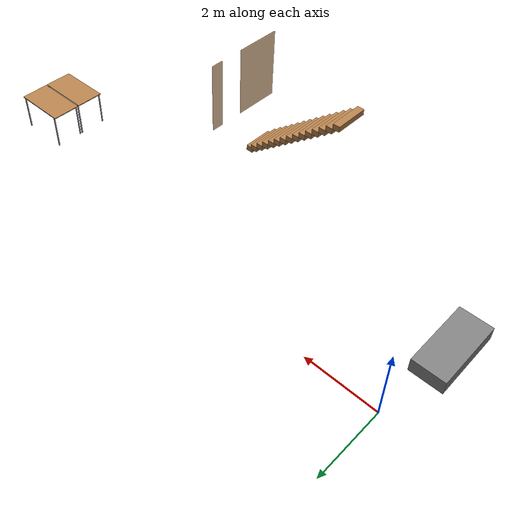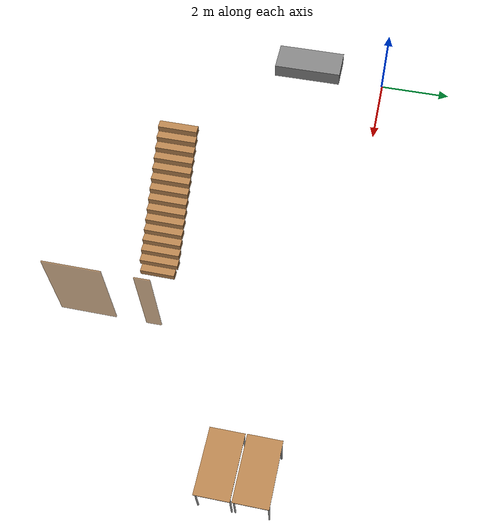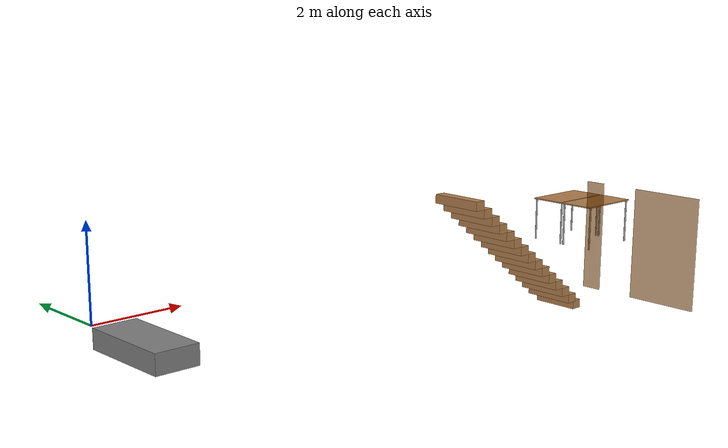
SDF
<sdf version="1.6">
 <world name="husarion_office">
  <physics name="1ms" type="ignored">
   <max_step_size>0.001</max_step_size>
   <real_time_factor>1.0</real_time_factor>
  </physics>
  <plugin filename="ignition-gazebo-contact-system" name="ignition::gazebo::systems::Contact"/>
  <plugin filename="libignition-gazebo-imu-system.so" name="ignition::gazebo::systems::Imu"/>
  <plugin filename="ignition-gazebo-physics-system" name="ignition::gazebo::systems::Physics"/>
  <plugin filename="ignition-gazebo-scene-broadcaster-system" name="ignition::gazebo::systems::SceneBroadcaster"/>
  <plugin name="ignition::gazebo::systems::UserCommands" filename="ignition-gazebo-user-commands-system"/>
  <plugin filename="libignition-gazebo-joint-state-publisher-system.so" name="ignition::gazebo::systems::JointStatePublisher"/>
  <plugin filename="libignition-gazebo-triggered-publisher-system.so" name="ignition::gazebo::systems::TriggeredPublisher">
   <input type="ignition.msgs.Int32" topic="/keyboard/keypress"><match field="data">16777235</match></input>
   <output type="ignition.msgs.Twist" topic="/cmd_vel">linear: {x: 0.5}, angular: {z: 0.0}</output>
  </plugin>
  <plugin filename="libignition-gazebo-triggered-publisher-system.so" name="ignition::gazebo::systems::TriggeredPublisher">
   <input type="ignition.msgs.Int32" topic="/keyboard/keypress"><match field="data">16777237</match></input>
   <output type="ignition.msgs.Twist" topic="/cmd_vel">linear: {x: -0.5}, angular: {z: 0.0}</output>
  </plugin>
  <plugin filename="libignition-gazebo-triggered-publisher-system.so" name="ignition::gazebo::systems::TriggeredPublisher">
   <input type="ignition.msgs.Int32" topic="/keyboard/keypress"><match field="data">16777236</match></input>
   <output type="ignition.msgs.Twist" topic="/cmd_vel">linear: {x: 0.0}, angular: {z: -0.5}</output>
  </plugin>
  <plugin filename="libignition-gazebo-triggered-publisher-system.so" name="ignition::gazebo::systems::TriggeredPublisher">
   <input type="ignition.msgs.Int32" topic="/keyboard/keypress"><match field="data">16777234</match></input>
   <output type="ignition.msgs.Twist" topic="/cmd_vel">linear: {x: 0.0}, angular: {z: 0.5}</output>
  </plugin>
  <plugin filename="libignition-gazebo-sensors-system.so" name="ignition::gazebo::systems::Sensors">
   <render_engine>ogre2</render_engine>
  </plugin>
  <spherical_coordinates>
   <surface_model>EARTH_WGS84</surface_model>
   <world_frame_orientation>ENU</world_frame_orientation>
   <latitude_deg>50.088280</latitude_deg>
   <longitude_deg>19.938931</longitude_deg>
   <elevation>0</elevation>
   <heading_deg>0</heading_deg>
  </spherical_coordinates>
  <scene>
   <ambient>0.8 0.8 0.8 1</ambient>
   <background>0 0 0 1</background>
   <grid>0</grid>
   <shadows>1</shadows>
  </scene>
  <light name="sun" type="directional">
   <pose>0 0 10 0 -0 0</pose>
   <diffuse>0.8 0.8 0.8 1</diffuse>
   <specular>0.2 0.2 0.2 1</specular>
   <attenuation>
    <range>1000</range>
    <constant>0.9</constant>
    <linear>0.01</linear>
    <quadratic>0.001</quadratic>
   </attenuation>
   <direction>-0.5 0.1 -0.9</direction>
   <spot><inner_angle>0</inner_angle><outer_angle>0</outer_angle><falloff>0</falloff></spot>
  </light>
  <model name="OpenRobotics/Table">
   <static>1</static>
   <link name="link">
    <collision name="surface">
     <pose>0 0 1 0 -0 0</pose>
     <geometry><box><size>1.5 0.8 0.03</size></box></geometry>
     <surface><friction><ode><mu>0.6</mu><mu2>0.6</mu2></ode></friction></surface>
    </collision>
    <visual name="visual1">
     <pose>0 0 1 0 -0 0</pose>
     <geometry><box><size>1.5 0.8 0.03</size></box></geometry>
     <material>
      <diffuse>1 1 1 1</diffuse>
      <script><uri>file://media/materials/scripts/gazebo.material</uri><name>Gazebo/Wood</name></script>
      <pbr>
       <metal>
        <albedo_map>https://fuel.gazebosim.org/1.0/openrobotics/models/table/3/files/Table_Diffuse.jpg</albedo_map>
       </metal>
      </pbr>
     </material>
    </visual>
    <collision name="front_left_leg">
     <pose>0.68 0.38 0.5 0 -0 0</pose>
     <geometry><cylinder><radius>0.02</radius><length>1</length></cylinder></geometry>
    </collision>
    <visual name="front_left_leg">
     <pose>0.68 0.38 0.5 0 -0 0</pose>
     <geometry><cylinder><radius>0.02</radius><length>1</length></cylinder></geometry>
     <material>
      <diffuse>0.5 0.5 0.5 1</diffuse>
      <script><uri>file://media/materials/scripts/gazebo.material</uri><name>Gazebo/Grey</name></script>
     </material>
    </visual>
    <collision name="front_right_leg">
     <pose>0.68 -0.38 0.5 0 -0 0</pose>
     <geometry><cylinder><radius>0.02</radius><length>1</length></cylinder></geometry>
    </collision>
    <visual name="front_right_leg">
     <pose>0.68 -0.38 0.5 0 -0 0</pose>
     <geometry><cylinder><radius>0.02</radius><length>1</length></cylinder></geometry>
     <material>
      <diffuse>0.5 0.5 0.5 1</diffuse>
      <script><uri>file://media/materials/scripts/gazebo.material</uri><name>Gazebo/Grey</name></script>
     </material>
    </visual>
    <collision name="back_right_leg">
     <pose>-0.68 -0.38 0.5 0 -0 0</pose>
     <geometry><cylinder><radius>0.02</radius><length>1</length></cylinder></geometry>
    </collision>
    <visual name="back_right_leg">
     <pose>-0.68 -0.38 0.5 0 -0 0</pose>
     <geometry><cylinder><radius>0.02</radius><length>1</length></cylinder></geometry>
     <material>
      <diffuse>0.5 0.5 0.5 1</diffuse>
      <script><uri>file://media/materials/scripts/gazebo.material</uri><name>Gazebo/Grey</name></script>
     </material>
    </visual>
    <collision name="back_left_leg">
     <pose>-0.68 0.38 0.5 0 -0 0</pose>
     <geometry><cylinder><radius>0.02</radius><length>1</length></cylinder></geometry>
    </collision>
    <visual name="back_left_leg">
     <pose>-0.68 0.38 0.5 0 -0 0</pose>
     <geometry><cylinder><radius>0.02</radius><length>1</length></cylinder></geometry>
     <material>
      <diffuse>0.5 0.5 0.5 1</diffuse>
      <script><uri>file://media/materials/scripts/gazebo.material</uri><name>Gazebo/Grey</name></script>
     </material>
    </visual>
   </link>
   <pose>12.483 -1.10033 0 0 0 -3.14</pose>
  </model>
  <model name="OpenRobotics/Table_2">
   <static>1</static>
   <link name="link">
    <collision name="surface">
     <pose>0 0 1 0 -0 0</pose>
     <geometry><box><size>1.5 0.8 0.03</size></box></geometry>
     <surface><friction><ode><mu>0.6</mu><mu2>0.6</mu2></ode></friction></surface>
    </collision>
    <visual name="visual1">
     <pose>0 0 1 0 -0 0</pose>
     <geometry><box><size>1.5 0.8 0.03</size></box></geometry>
     <material>
      <diffuse>1 1 1 1</diffuse>
      <script><uri>file://media/materials/scripts/gazebo.material</uri><name>Gazebo/Wood</name></script>
      <pbr>
       <metal>
        <albedo_map>https://fuel.gazebosim.org/1.0/openrobotics/models/table/3/files/Table_Diffuse.jpg</albedo_map>
       </metal>
      </pbr>
     </material>
    </visual>
    <collision name="front_left_leg">
     <pose>0.68 0.38 0.5 0 -0 0</pose>
     <geometry><cylinder><radius>0.02</radius><length>1</length></cylinder></geometry>
    </collision>
    <visual name="front_left_leg">
     <pose>0.68 0.38 0.5 0 -0 0</pose>
     <geometry><cylinder><radius>0.02</radius><length>1</length></cylinder></geometry>
     <material>
      <diffuse>0.5 0.5 0.5 1</diffuse>
      <script><uri>file://media/materials/scripts/gazebo.material</uri><name>Gazebo/Grey</name></script>
     </material>
    </visual>
    <collision name="front_right_leg">
     <pose>0.68 -0.38 0.5 0 -0 0</pose>
     <geometry><cylinder><radius>0.02</radius><length>1</length></cylinder></geometry>
    </collision>
    <visual name="front_right_leg">
     <pose>0.68 -0.38 0.5 0 -0 0</pose>
     <geometry><cylinder><radius>0.02</radius><length>1</length></cylinder></geometry>
     <material>
      <diffuse>0.5 0.5 0.5 1</diffuse>
      <script><uri>file://media/materials/scripts/gazebo.material</uri><name>Gazebo/Grey</name></script>
     </material>
    </visual>
    <collision name="back_right_leg">
     <pose>-0.68 -0.38 0.5 0 -0 0</pose>
     <geometry><cylinder><radius>0.02</radius><length>1</length></cylinder></geometry>
    </collision>
    <visual name="back_right_leg">
     <pose>-0.68 -0.38 0.5 0 -0 0</pose>
     <geometry><cylinder><radius>0.02</radius><length>1</length></cylinder></geometry>
     <material>
      <diffuse>0.5 0.5 0.5 1</diffuse>
      <script><uri>file://media/materials/scripts/gazebo.material</uri><name>Gazebo/Grey</name></script>
     </material>
    </visual>
    <collision name="back_left_leg">
     <pose>-0.68 0.38 0.5 0 -0 0</pose>
     <geometry><cylinder><radius>0.02</radius><length>1</length></cylinder></geometry>
    </collision>
    <visual name="back_left_leg">
     <pose>-0.68 0.38 0.5 0 -0 0</pose>
     <geometry><cylinder><radius>0.02</radius><length>1</length></cylinder></geometry>
     <material>
      <diffuse>0.5 0.5 0.5 1</diffuse>
      <script><uri>file://media/materials/scripts/gazebo.material</uri><name>Gazebo/Grey</name></script>
     </material>
    </visual>
   </link>
   <pose>12.4903 -1.93794 0 0 0 -3.139</pose>
  </model>
  <model name="Stairs">
   <pose>3.36692 -2.10944 0 0 -0 0</pose>
   <link name="Stairs_1">
    <visual name="Stairs_1_Visual_0">
     <pose>4.29715 -2.69448 0.083333 0 -0 -1.5708</pose>
     <geometry><box><size>0.9 0.205349 0.166667</size></box></geometry>
     <material>
      <script><uri>file://media/materials/scripts/gazebo.material</uri><name>Gazebo/Wood</name></script>
      <ambient>1 1 1 1</ambient>
     </material>
     <meta><layer>0</layer></meta>
    </visual>
    <collision name="Stairs_1_Collision_0">
     <geometry><box><size>1 0.205349 0.166667</size></box></geometry>
     <pose>4.29715 -2.69448 0.083333 0 -0 -1.5708</pose>
    </collision>
    <visual name="Stairs_1_Visual_1">
     <pose>4.0918 -2.69448 0.25 0 -0 -1.5708</pose>
     <geometry><box><size>1 0.205349 0.166667</size></box></geometry>
     <material>
      <script><uri>file://media/materials/scripts/gazebo.material</uri><name>Gazebo/Wood</name></script>
      <ambient>1 1 1 1</ambient>
     </material>
     <meta><layer>0</layer></meta>
    </visual>
    <collision name="Stairs_1_Collision_1">
     <geometry><box><size>1 0.205349 0.166667</size></box></geometry>
     <pose>4.0918 -2.69448 0.25 0 -0 -1.5708</pose>
    </collision>
    <visual name="Stairs_1_Visual_2">
     <pose>3.88645 -2.69448 0.416667 0 -0 -1.5708</pose>
     <geometry><box><size>1 0.205349 0.166667</size></box></geometry>
     <material>
      <script><uri>file://media/materials/scripts/gazebo.material</uri><name>Gazebo/Wood</name></script>
      <ambient>1 1 1 1</ambient>
     </material>
     <meta><layer>0</layer></meta>
    </visual>
    <collision name="Stairs_1_Collision_2">
     <geometry><box><size>1 0.205349 0.166667</size></box></geometry>
     <pose>3.88645 -2.69448 0.416667 0 -0 -1.5708</pose>
    </collision>
    <visual name="Stairs_1_Visual_3">
     <pose>3.6811 -2.69448 0.583333 0 -0 -1.5708</pose>
     <geometry><box><size>1 0.205349 0.166667</size></box></geometry>
     <material>
      <script><uri>file://media/materials/scripts/gazebo.material</uri><name>Gazebo/Wood</name></script>
      <ambient>1 1 1 1</ambient>
     </material>
     <meta><layer>0</layer></meta>
    </visual>
    <collision name="Stairs_1_Collision_3">
     <geometry><box><size>1 0.205349 0.166667</size></box></geometry>
     <pose>3.6811 -2.69448 0.583333 0 -0 -1.5708</pose>
    </collision>
    <visual name="Stairs_1_Visual_4">
     <pose>3.47575 -2.69448 0.75 0 -0 -1.5708</pose>
     <geometry><box><size>1 0.205349 0.166667</size></box></geometry>
     <material>
      <script><uri>file://media/materials/scripts/gazebo.material</uri><name>Gazebo/Wood</name></script>
      <ambient>1 1 1 1</ambient>
     </material>
     <meta><layer>0</layer></meta>
    </visual>
    <collision name="Stairs_1_Collision_4">
     <geometry><box><size>1 0.205349 0.166667</size></box></geometry>
     <pose>3.47575 -2.69448 0.75 0 -0 -1.5708</pose>
    </collision>
    <visual name="Stairs_1_Visual_5">
     <pose>3.2704 -2.69448 0.916667 0 -0 -1.5708</pose>
     <geometry><box><size>1 0.205349 0.166667</size></box></geometry>
     <material>
      <script><uri>file://media/materials/scripts/gazebo.material</uri><name>Gazebo/Wood</name></script>
      <ambient>1 1 1 1</ambient>
     </material>
     <meta><layer>0</layer></meta>
    </visual>
    <collision name="Stairs_1_Collision_5">
     <geometry><box><size>1 0.205349 0.166667</size></box></geometry>
     <pose>3.2704 -2.69448 0.916667 0 -0 -1.5708</pose>
    </collision>
    <visual name="Stairs_1_Visual_6">
     <pose>3.06505 -2.69448 1.08333 0 -0 -1.5708</pose>
     <geometry><box><size>1 0.205349 0.166667</size></box></geometry>
     <material>
      <script><uri>file://media/materials/scripts/gazebo.material</uri><name>Gazebo/Wood</name></script>
      <ambient>1 1 1 1</ambient>
     </material>
     <meta><layer>0</layer></meta>
    </visual>
    <collision name="Stairs_1_Collision_6">
     <geometry><box><size>1 0.205349 0.166667</size></box></geometry>
     <pose>3.06505 -2.69448 1.08333 0 -0 -1.5708</pose>
    </collision>
    <visual name="Stairs_1_Visual_7">
     <pose>2.8597 -2.69448 1.25 0 -0 -1.5708</pose>
     <geometry><box><size>1 0.205349 0.166667</size></box></geometry>
     <material>
      <script><uri>file://media/materials/scripts/gazebo.material</uri><name>Gazebo/Wood</name></script>
      <ambient>1 1 1 1</ambient>
     </material>
     <meta><layer>0</layer></meta>
    </visual>
    <collision name="Stairs_1_Collision_7">
     <geometry><box><size>1 0.205349 0.166667</size></box></geometry>
     <pose>2.8597 -2.69448 1.25 0 -0 -1.5708</pose>
    </collision>
    <visual name="Stairs_1_Visual_8">
     <pose>2.65435 -2.69448 1.41667 0 -0 -1.5708</pose>
     <geometry><box><size>1 0.205349 0.166667</size></box></geometry>
     <material>
      <script><uri>file://media/materials/scripts/gazebo.material</uri><name>Gazebo/Wood</name></script>
      <ambient>1 1 1 1</ambient>
     </material>
     <meta><layer>0</layer></meta>
    </visual>
    <collision name="Stairs_1_Collision_8">
     <geometry><box><size>1 0.205349 0.166667</size></box></geometry>
     <pose>2.65435 -2.69448 1.41667 0 -0 -1.5708</pose>
    </collision>
    <visual name="Stairs_1_Visual_9">
     <pose>2.449 -2.69448 1.58333 0 -0 -1.5708</pose>
     <geometry><box><size>1 0.205349 0.166667</size></box></geometry>
     <material>
      <script><uri>file://media/materials/scripts/gazebo.material</uri><name>Gazebo/Wood</name></script>
      <ambient>1 1 1 1</ambient>
     </material>
     <meta><layer>0</layer></meta>
    </visual>
    <collision name="Stairs_1_Collision_9">
     <geometry><box><size>1 0.205349 0.166667</size></box></geometry>
     <pose>2.449 -2.69448 1.58333 0 -0 -1.5708</pose>
    </collision>
    <visual name="Stairs_1_Visual_10">
     <pose>2.24365 -2.69448 1.75 0 -0 -1.5708</pose>
     <geometry><box><size>1 0.205349 0.166667</size></box></geometry>
     <material>
      <script><uri>file://media/materials/scripts/gazebo.material</uri><name>Gazebo/Wood</name></script>
      <ambient>1 1 1 1</ambient>
     </material>
     <meta><layer>0</layer></meta>
    </visual>
    <collision name="Stairs_1_Collision_10">
     <geometry><box><size>1 0.205349 0.166667</size></box></geometry>
     <pose>2.24365 -2.69448 1.75 0 -0 -1.5708</pose>
    </collision>
    <visual name="Stairs_1_Visual_11">
     <pose>2.0383 -2.69448 1.91667 0 -0 -1.5708</pose>
     <geometry><box><size>1 0.205349 0.166667</size></box></geometry>
     <material>
      <script><uri>file://media/materials/scripts/gazebo.material</uri><name>Gazebo/Wood</name></script>
      <ambient>1 1 1 1</ambient>
     </material>
     <meta><layer>0</layer></meta>
    </visual>
    <collision name="Stairs_1_Collision_11">
     <geometry><box><size>1 0.205349 0.166667</size></box></geometry>
     <pose>2.0383 -2.69448 1.91667 0 -0 -1.5708</pose>
    </collision>
    <visual name="Stairs_1_Visual_12">
     <pose>1.83295 -2.69448 2.08333 0 -0 -1.5708</pose>
     <geometry><box><size>1 0.205349 0.166667</size></box></geometry>
     <material>
      <script><uri>file://media/materials/scripts/gazebo.material</uri><name>Gazebo/Wood</name></script>
      <ambient>1 1 1 1</ambient>
     </material>
     <meta><layer>0</layer></meta>
    </visual>
    <collision name="Stairs_1_Collision_12">
     <geometry><box><size>1 0.205349 0.166667</size></box></geometry>
     <pose>1.83295 -2.69448 2.08333 0 -0 -1.5708</pose>
    </collision>
    <visual name="Stairs_1_Visual_13">
     <pose>1.62761 -2.69448 2.25 0 -0 -1.5708</pose>
     <geometry><box><size>1 0.205349 0.166667</size></box></geometry>
     <material>
      <script><uri>file://media/materials/scripts/gazebo.material</uri><name>Gazebo/Wood</name></script>
      <ambient>1 1 1 1</ambient>
     </material>
     <meta><layer>0</layer></meta>
    </visual>
    <collision name="Stairs_1_Collision_13">
     <geometry><box><size>1 0.205349 0.166667</size></box></geometry>
     <pose>1.62761 -2.69448 2.25 0 -0 -1.5708</pose>
    </collision>
    <visual name="Stairs_1_Visual_14">
     <pose>1.42226 -2.69448 2.41667 0 -0 -1.5708</pose>
     <geometry><box><size>1 0.205349 0.166667</size></box></geometry>
     <material>
      <script><uri>file://media/materials/scripts/gazebo.material</uri><name>Gazebo/Wood</name></script>
      <ambient>1 1 1 1</ambient>
     </material>
     <meta><layer>0</layer></meta>
    </visual>
    <collision name="Stairs_1_Collision_14">
     <geometry><box><size>1 0.205349 0.166667</size></box></geometry>
     <pose>1.42226 -2.69448 2.41667 0 -0 -1.5708</pose>
    </collision>
   </link>
   <static>1</static>
  </model>
  <model name="Glass_wall_1">
   <pose>9.09134 -6.20141 0 -0 -0 -1.56984</pose>
   <link name="right">
    <pose>0 0 1.11 0 -0 0</pose>
    <visual name="right_visual">
     <geometry><box><size>1.43627 0.03 2.2</size></box></geometry>
     <material><ambient>0.5 0.25 0 0.6</ambient><diffuse>0.5 0.25 0 0.6</diffuse></material>
    </visual>
    <collision name="right_collision">
     <geometry><box><size>1.43627 0.03 2.2</size></box></geometry>
     <surface><contact><collide_bitmask>2</collide_bitmask></contact></surface>
    </collision>
    <inertial>
     <mass>50</mass>
     <inertia><ixx>20.1704</ixx><iyy>28.762</iyy><izz>8.59904</izz><ixy>0</ixy><ixz>0</ixz><iyz>0</iyz></inertia>
    </inertial>
   </link>
   <joint name="right_joint" type="revolute">
    <parent>world</parent>
    <child>right</child>
    <axis>
     <xyz>0 0 -1</xyz>
     <limit><lower>0</lower><upper>0</upper></limit>
     <dynamics><spring_reference>0</spring_reference><spring_stiffness>0</spring_stiffness></dynamics>
    </axis>
    <pose>0.723135 0 0 0 -0 0</pose>
   </joint>
  </model>
  <model name="Glass_wall_2">
   <pose>9.08943 -4.5093 0 0 -0 1.58293</pose>
   <link name="right">
    <pose>0 0 1.11 0 -0 0</pose>
    <visual name="right_visual">
     <geometry><box><size>0.389643 0.03 2.2</size></box></geometry>
     <material><ambient>0.5 0.25 0 0.6</ambient><diffuse>0.5 0.25 0 0.6</diffuse></material>
    </visual>
    <collision name="right_collision">
     <geometry><box><size>0.389643 0.03 2.2</size></box></geometry>
     <surface><contact><collide_bitmask>2</collide_bitmask></contact></surface>
    </collision>
    <inertial>
     <mass>50</mass>
     <inertia><ixx>20.1704</ixx><iyy>20.7993</iyy><izz>0.636341</izz><ixy>0</ixy><ixz>0</ixz><iyz>0</iyz></inertia>
    </inertial>
   </link>
   <joint name="right_joint" type="revolute">
    <parent>world</parent>
    <child>right</child>
    <axis>
     <xyz>0 0 -1</xyz>
     <limit><lower>0</lower><upper>0</upper></limit>
     <dynamics><spring_reference>0</spring_reference><spring_stiffness>0</spring_stiffness></dynamics>
    </axis>
    <pose>0.199822 0 0 0 -0 0</pose>
   </joint>
  </model>
  <model name="Shelf_1">
   <static>1</static>
   <pose>-0.273934 -2.28745 0.2 0 0 -1.56696</pose>
   <link name="shelf_link">
    <collision name="body_collision"><geometry><box><size>1.9638 0.8878 0.4</size></box></geometry></collision>
    <visual name="body_visual">
     <material>
      <ambient>0.4 0.4 0.4 1</ambient>
      <diffuse>0.5 0.5 0.5 1</diffuse>
      <specular>0 0 0 0</specular>
      <emissive>0 0 0 1</emissive>
     </material>
     <geometry><box><size>1.9638 0.8878 0.4</size></box></geometry>
    </visual>
   </link>
  </model>
  <gravity>0 0 -9.8</gravity>
  <magnetic_field>6e-06 2.3e-05 -4.2e-05</magnetic_field>
  <atmosphere type="adiabatic"/>
  <physics type="ode">
   <max_step_size>0.001</max_step_size>
   <real_time_factor>1</real_time_factor>
   <real_time_update_rate>1000</real_time_update_rate>
  </physics>
  <spherical_coordinates>
   <surface_model>EARTH_WGS84</surface_model>
   <latitude_deg>0</latitude_deg>
   <longitude_deg>0</longitude_deg>
   <elevation>0</elevation>
   <heading_deg>0</heading_deg>
  </spherical_coordinates>
 </world>
</sdf>
